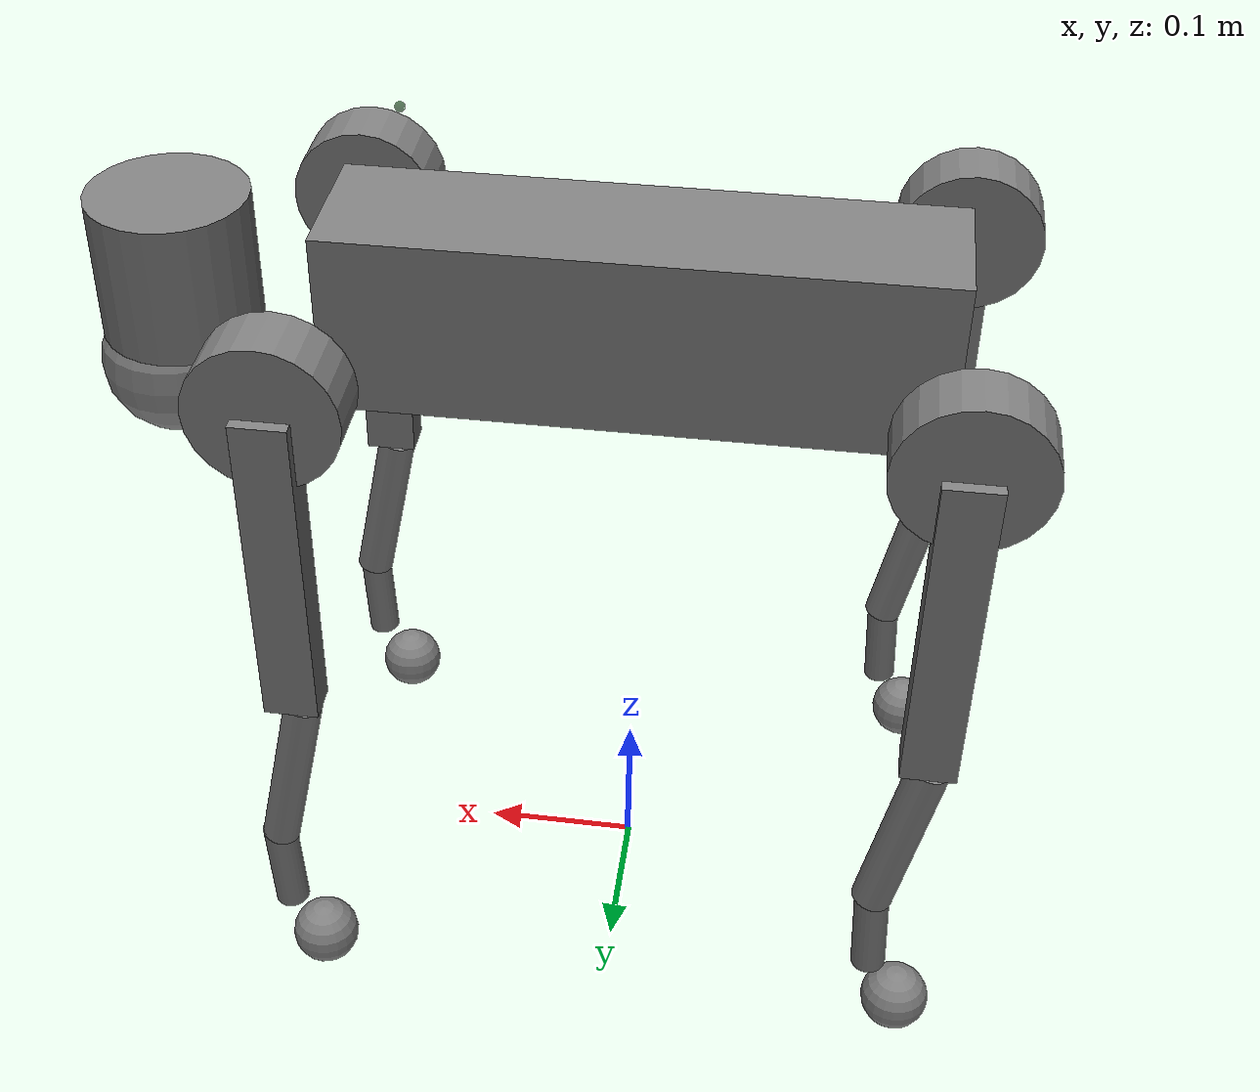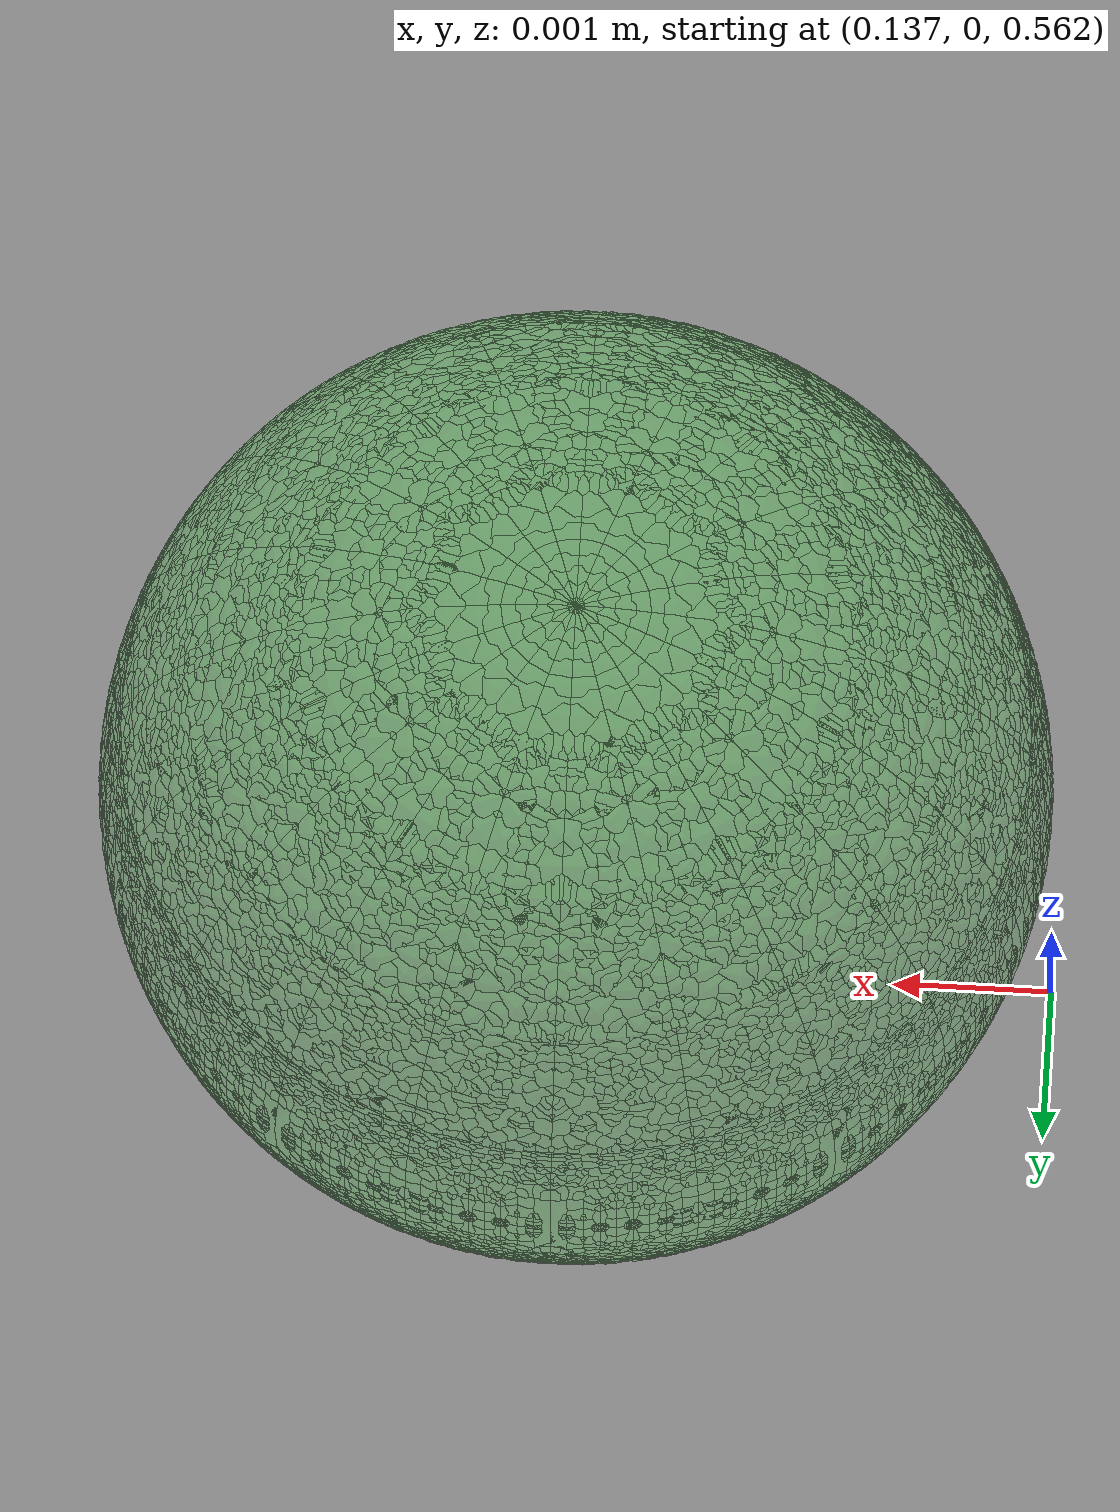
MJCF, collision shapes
<mujoco model="go2">
  <compiler angle="radian" meshdir="assets" autolimits="true" />

  <option cone="elliptic" impratio="100" timestep="0.001" />

  <default>

    <default class="go2">
      <geom friction="0.4" margin="0.001" condim="1"/>
      <joint axis="0 1 0" damping="0.1" armature="0.01" frictionloss="0.2"/>
      <motor ctrlrange="-23.7 23.7"/>

      <!-- 外展 -->
      <default class="abduction">
        <joint axis="1 0 0" range="-1.0472 1.0472"/>
      </default>

      <!-- 大腿关节 -->
      <default class="hip">
      <!-- 前大腿 -->
        <default class="front_hip">
          <joint range="-1.5708 3.4907"/>
        </default>
        <!-- 后大腿 -->
        <default class="back_hip">
          <joint range="-0.5236 4.5379"/>
        </default>
      </default>

      <!-- 小腿关节的 -->
      <default class="knee">
        <joint range="-2.7227 -0.83776"/>
        <motor ctrlrange="-45.43 45.43"/>
      </default>

      <default class="visual">
        <geom type="mesh" contype="0" conaffinity="0" group="2" rgba="1 1 1 1" />
      </default>
      <!-- 碰撞 -->
      <default class="collision">
        <geom group="3"/>
        <default class="foot">
          <geom size="0.022" pos="-0.002 0 -0.213" priority="1" condim="6"
            friction="0.4 0.02 0.01"/>
        </default>
      </default>
    </default>
  </default>

  <asset>
    <material name="metal" rgba=".9 .95 .95 1" />
    <material name="black" rgba="0 0 0 1" />
    <material name="white" rgba="1 1 1 1" />
    <material name="gray" rgba="0.671705 0.692426 0.774270 1" />

    <mesh file="base_0.obj" />
    <mesh file="base_1.obj" />
    <mesh file="base_2.obj" />
    <mesh file="base_3.obj" />
    <mesh file="base_4.obj" />
    <mesh file="hip_0.obj" />
    <mesh file="hip_1.obj" />
    <mesh file="thigh_0.obj" />
    <mesh file="thigh_1.obj" />
    <mesh file="thigh_mirror_0.obj" />
    <mesh file="thigh_mirror_1.obj" />
    <mesh file="calf_0.obj" />
    <mesh file="calf_1.obj" />
    <mesh file="calf_mirror_0.obj" />
    <mesh file="calf_mirror_1.obj" />
    <mesh file="foot.obj" />
  </asset>

  <worldbody>
    <body name="base_link" pos="0 0 0.445" childclass="go2">
    <camera name="camera1" pos="0.33 0 0"  resolution="160 120" euler="0 -1.57 -1.57" />
      <inertial pos="0.021112 0 -0.005366" quat="-0.000543471 0.713435 -0.00173769 0.700719"
        mass="6.921"
        diaginertia="0.107027 0.0980771 0.0244531" />
      <freejoint />
      <geom mesh="base_0" material="black" class="visual" />
      <geom mesh="base_1" material="black" class="visual" />
      <geom mesh="base_2" material="black" class="visual" />
      <geom mesh="base_3" material="white" class="visual" />
      <geom mesh="base_4" material="gray" class="visual" />
      <geom size="0.1881 0.04675 0.057" type="box" class="collision" />
      <geom size="0.05 0.045" pos="0.285 0 0.01" type="cylinder" class="collision" />
      <geom size="0.047" pos="0.293 0 -0.06" class="collision" />

   <site name="imu" pos="-0.02557 0 0.04232" />
      <site name="lidar_site_000" pos="0.14 0 0.12" size="0.003" zaxis="1.000000 0.000000 0" rgba="0 1 0 0.15" />
      <site name="lidar_site_001" pos="0.14 0 0.12" size="0.003" zaxis="0.997564 0.069756 0" rgba="0 1 0 0.15" />
      <site name="lidar_site_002" pos="0.14 0 0.12" size="0.003" zaxis="0.990268 0.139173 0" rgba="0 1 0 0.15" />
      <site name="lidar_site_003" pos="0.14 0 0.12" size="0.003" zaxis="0.978148 0.207912 0" rgba="0 1 0 0.15" />
      <site name="lidar_site_004" pos="0.14 0 0.12" size="0.003" zaxis="0.961262 0.275637 0" rgba="0 1 0 0.15" />
      <site name="lidar_site_005" pos="0.14 0 0.12" size="0.003" zaxis="0.939693 0.342020 0" rgba="0 1 0 0.15" />
      <site name="lidar_site_006" pos="0.14 0 0.12" size="0.003" zaxis="0.913545 0.406737 0" rgba="0 1 0 0.15" />
      <site name="lidar_site_007" pos="0.14 0 0.12" size="0.003" zaxis="0.882948 0.469472 0" rgba="0 1 0 0.15" />
      <site name="lidar_site_008" pos="0.14 0 0.12" size="0.003" zaxis="0.848048 0.529919 0" rgba="0 1 0 0.15" />
      <site name="lidar_site_009" pos="0.14 0 0.12" size="0.003" zaxis="0.809017 0.587785 0" rgba="0 1 0 0.15" />
      <site name="lidar_site_010" pos="0.14 0 0.12" size="0.003" zaxis="0.766044 0.642788 0" rgba="0 1 0 0.15" />
      <site name="lidar_site_011" pos="0.14 0 0.12" size="0.003" zaxis="0.719340 0.694658 0" rgba="0 1 0 0.15" />
      <site name="lidar_site_012" pos="0.14 0 0.12" size="0.003" zaxis="0.669131 0.743145 0" rgba="0 1 0 0.15" />
      <site name="lidar_site_013" pos="0.14 0 0.12" size="0.003" zaxis="0.615661 0.788011 0" rgba="0 1 0 0.15" />
      <site name="lidar_site_014" pos="0.14 0 0.12" size="0.003" zaxis="0.559193 0.829038 0" rgba="0 1 0 0.15" />
      <site name="lidar_site_015" pos="0.14 0 0.12" size="0.003" zaxis="0.500000 0.866025 0" rgba="0 1 0 0.15" />
      <site name="lidar_site_016" pos="0.14 0 0.12" size="0.003" zaxis="0.438371 0.898794 0" rgba="0 1 0 0.15" />
      <site name="lidar_site_017" pos="0.14 0 0.12" size="0.003" zaxis="0.374607 0.927184 0" rgba="0 1 0 0.15" />
      <site name="lidar_site_018" pos="0.14 0 0.12" size="0.003" zaxis="0.309017 0.951057 0" rgba="0 1 0 0.15" />
      <site name="lidar_site_019" pos="0.14 0 0.12" size="0.003" zaxis="0.241922 0.970296 0" rgba="0 1 0 0.15" />
      <site name="lidar_site_020" pos="0.14 0 0.12" size="0.003" zaxis="0.173648 0.984808 0" rgba="0 1 0 0.15" />
      <site name="lidar_site_021" pos="0.14 0 0.12" size="0.003" zaxis="0.104528 0.994522 0" rgba="0 1 0 0.15" />
      <site name="lidar_site_022" pos="0.14 0 0.12" size="0.003" zaxis="0.034899 0.999391 0" rgba="0 1 0 0.15" />
      <site name="lidar_site_023" pos="0.14 0 0.12" size="0.003" zaxis="-0.034899 0.999391 0" rgba="0 1 0 0.15" />
      <site name="lidar_site_024" pos="0.14 0 0.12" size="0.003" zaxis="-0.104528 0.994522 0" rgba="0 1 0 0.15" />
      <site name="lidar_site_025" pos="0.14 0 0.12" size="0.003" zaxis="-0.173648 0.984808 0" rgba="0 1 0 0.15" />
      <site name="lidar_site_026" pos="0.14 0 0.12" size="0.003" zaxis="-0.241922 0.970296 0" rgba="0 1 0 0.15" />
      <site name="lidar_site_027" pos="0.14 0 0.12" size="0.003" zaxis="-0.309017 0.951057 0" rgba="0 1 0 0.15" />
      <site name="lidar_site_028" pos="0.14 0 0.12" size="0.003" zaxis="-0.374607 0.927184 0" rgba="0 1 0 0.15" />
      <site name="lidar_site_029" pos="0.14 0 0.12" size="0.003" zaxis="-0.438371 0.898794 0" rgba="0 1 0 0.15" />
      <site name="lidar_site_030" pos="0.14 0 0.12" size="0.003" zaxis="-0.500000 0.866025 0" rgba="0 1 0 0.15" />
      <site name="lidar_site_031" pos="0.14 0 0.12" size="0.003" zaxis="-0.559193 0.829038 0" rgba="0 1 0 0.15" />
      <site name="lidar_site_032" pos="0.14 0 0.12" size="0.003" zaxis="-0.615661 0.788011 0" rgba="0 1 0 0.15" />
      <site name="lidar_site_033" pos="0.14 0 0.12" size="0.003" zaxis="-0.669131 0.743145 0" rgba="0 1 0 0.15" />
      <site name="lidar_site_034" pos="0.14 0 0.12" size="0.003" zaxis="-0.719340 0.694658 0" rgba="0 1 0 0.15" />
      <site name="lidar_site_035" pos="0.14 0 0.12" size="0.003" zaxis="-0.766044 0.642788 0" rgba="0 1 0 0.15" />
      <site name="lidar_site_036" pos="0.14 0 0.12" size="0.003" zaxis="-0.809017 0.587785 0" rgba="0 1 0 0.15" />
      <site name="lidar_site_037" pos="0.14 0 0.12" size="0.003" zaxis="-0.848048 0.529919 0" rgba="0 1 0 0.15" />
      <site name="lidar_site_038" pos="0.14 0 0.12" size="0.003" zaxis="-0.882948 0.469472 0" rgba="0 1 0 0.15" />
      <site name="lidar_site_039" pos="0.14 0 0.12" size="0.003" zaxis="-0.913545 0.406737 0" rgba="0 1 0 0.15" />
      <site name="lidar_site_040" pos="0.14 0 0.12" size="0.003" zaxis="-0.939693 0.342020 0" rgba="0 1 0 0.15" />
      <site name="lidar_site_041" pos="0.14 0 0.12" size="0.003" zaxis="-0.961262 0.275637 0" rgba="0 1 0 0.15" />
      <site name="lidar_site_042" pos="0.14 0 0.12" size="0.003" zaxis="-0.978148 0.207912 0" rgba="0 1 0 0.15" />
      <site name="lidar_site_043" pos="0.14 0 0.12" size="0.003" zaxis="-0.990268 0.139173 0" rgba="0 1 0 0.15" />
      <site name="lidar_site_044" pos="0.14 0 0.12" size="0.003" zaxis="-0.997564 0.069756 0" rgba="0 1 0 0.15" />
      <site name="lidar_site_045" pos="0.14 0 0.12" size="0.003" zaxis="-1.000000 0.000000 0" rgba="0 1 0 0.15" />
      <site name="lidar_site_046" pos="0.14 0 0.12" size="0.003" zaxis="-0.997564 -0.069756 0" rgba="0 1 0 0.15" />
      <site name="lidar_site_047" pos="0.14 0 0.12" size="0.003" zaxis="-0.990268 -0.139173 0" rgba="0 1 0 0.15" />
      <site name="lidar_site_048" pos="0.14 0 0.12" size="0.003" zaxis="-0.978148 -0.207912 0" rgba="0 1 0 0.15" />
      <site name="lidar_site_049" pos="0.14 0 0.12" size="0.003" zaxis="-0.961262 -0.275637 0" rgba="0 1 0 0.15" />
      <site name="lidar_site_050" pos="0.14 0 0.12" size="0.003" zaxis="-0.939693 -0.342020 0" rgba="0 1 0 0.15" />
      <site name="lidar_site_051" pos="0.14 0 0.12" size="0.003" zaxis="-0.913545 -0.406737 0" rgba="0 1 0 0.15" />
      <site name="lidar_site_052" pos="0.14 0 0.12" size="0.003" zaxis="-0.882948 -0.469472 0" rgba="0 1 0 0.15" />
      <site name="lidar_site_053" pos="0.14 0 0.12" size="0.003" zaxis="-0.848048 -0.529919 0" rgba="0 1 0 0.15" />
      <site name="lidar_site_054" pos="0.14 0 0.12" size="0.003" zaxis="-0.809017 -0.587785 0" rgba="0 1 0 0.15" />
      <site name="lidar_site_055" pos="0.14 0 0.12" size="0.003" zaxis="-0.766044 -0.642788 0" rgba="0 1 0 0.15" />
      <site name="lidar_site_056" pos="0.14 0 0.12" size="0.003" zaxis="-0.719340 -0.694658 0" rgba="0 1 0 0.15" />
      <site name="lidar_site_057" pos="0.14 0 0.12" size="0.003" zaxis="-0.669131 -0.743145 0" rgba="0 1 0 0.15" />
      <site name="lidar_site_058" pos="0.14 0 0.12" size="0.003" zaxis="-0.615661 -0.788011 0" rgba="0 1 0 0.15" />
      <site name="lidar_site_059" pos="0.14 0 0.12" size="0.003" zaxis="-0.559193 -0.829038 0" rgba="0 1 0 0.15" />
      <site name="lidar_site_060" pos="0.14 0 0.12" size="0.003" zaxis="-0.500000 -0.866025 0" rgba="0 1 0 0.15" />
      <site name="lidar_site_061" pos="0.14 0 0.12" size="0.003" zaxis="-0.438371 -0.898794 0" rgba="0 1 0 0.15" />
      <site name="lidar_site_062" pos="0.14 0 0.12" size="0.003" zaxis="-0.374607 -0.927184 0" rgba="0 1 0 0.15" />
      <site name="lidar_site_063" pos="0.14 0 0.12" size="0.003" zaxis="-0.309017 -0.951057 0" rgba="0 1 0 0.15" />
      <site name="lidar_site_064" pos="0.14 0 0.12" size="0.003" zaxis="-0.241922 -0.970296 0" rgba="0 1 0 0.15" />
      <site name="lidar_site_065" pos="0.14 0 0.12" size="0.003" zaxis="-0.173648 -0.984808 0" rgba="0 1 0 0.15" />
      <site name="lidar_site_066" pos="0.14 0 0.12" size="0.003" zaxis="-0.104528 -0.994522 0" rgba="0 1 0 0.15" />
      <site name="lidar_site_067" pos="0.14 0 0.12" size="0.003" zaxis="-0.034899 -0.999391 0" rgba="0 1 0 0.15" />
      <site name="lidar_site_068" pos="0.14 0 0.12" size="0.003" zaxis="0.034899 -0.999391 0" rgba="0 1 0 0.15" />
      <site name="lidar_site_069" pos="0.14 0 0.12" size="0.003" zaxis="0.104528 -0.994522 0" rgba="0 1 0 0.15" />
      <site name="lidar_site_070" pos="0.14 0 0.12" size="0.003" zaxis="0.173648 -0.984808 0" rgba="0 1 0 0.15" />
      <site name="lidar_site_071" pos="0.14 0 0.12" size="0.003" zaxis="0.241922 -0.970296 0" rgba="0 1 0 0.15" />
      <site name="lidar_site_072" pos="0.14 0 0.12" size="0.003" zaxis="0.309017 -0.951057 0" rgba="0 1 0 0.15" />
      <site name="lidar_site_073" pos="0.14 0 0.12" size="0.003" zaxis="0.374607 -0.927184 0" rgba="0 1 0 0.15" />
      <site name="lidar_site_074" pos="0.14 0 0.12" size="0.003" zaxis="0.438371 -0.898794 0" rgba="0 1 0 0.15" />
      <site name="lidar_site_075" pos="0.14 0 0.12" size="0.003" zaxis="0.500000 -0.866025 0" rgba="0 1 0 0.15" />
      <site name="lidar_site_076" pos="0.14 0 0.12" size="0.003" zaxis="0.559193 -0.829038 0" rgba="0 1 0 0.15" />
      <site name="lidar_site_077" pos="0.14 0 0.12" size="0.003" zaxis="0.615661 -0.788011 0" rgba="0 1 0 0.15" />
      <site name="lidar_site_078" pos="0.14 0 0.12" size="0.003" zaxis="0.669131 -0.743145 0" rgba="0 1 0 0.15" />
      <site name="lidar_site_079" pos="0.14 0 0.12" size="0.003" zaxis="0.719340 -0.694658 0" rgba="0 1 0 0.15" />
      <site name="lidar_site_080" pos="0.14 0 0.12" size="0.003" zaxis="0.766044 -0.642788 0" rgba="0 1 0 0.15" />
      <site name="lidar_site_081" pos="0.14 0 0.12" size="0.003" zaxis="0.809017 -0.587785 0" rgba="0 1 0 0.15" />
      <site name="lidar_site_082" pos="0.14 0 0.12" size="0.003" zaxis="0.848048 -0.529919 0" rgba="0 1 0 0.15" />
      <site name="lidar_site_083" pos="0.14 0 0.12" size="0.003" zaxis="0.882948 -0.469472 0" rgba="0 1 0 0.15" />
      <site name="lidar_site_084" pos="0.14 0 0.12" size="0.003" zaxis="0.913545 -0.406737 0" rgba="0 1 0 0.15" />
      <site name="lidar_site_085" pos="0.14 0 0.12" size="0.003" zaxis="0.939693 -0.342020 0" rgba="0 1 0 0.15" />
      <site name="lidar_site_086" pos="0.14 0 0.12" size="0.003" zaxis="0.961262 -0.275637 0" rgba="0 1 0 0.15" />
      <site name="lidar_site_087" pos="0.14 0 0.12" size="0.003" zaxis="0.978148 -0.207912 0" rgba="0 1 0 0.15" />
      <site name="lidar_site_088" pos="0.14 0 0.12" size="0.003" zaxis="0.990268 -0.139173 0" rgba="0 1 0 0.15" />
      <site name="lidar_site_089" pos="0.14 0 0.12" size="0.003" zaxis="0.997564 -0.069756 0" rgba="0 1 0 0.15" />
      <!-- 前左 -->
      <body name="FL_hip" pos="0.1934 0.0465 0">
        <inertial pos="-0.0054 0.00194 -0.000105" quat="0.497014 0.499245 0.505462 0.498237"
          mass="0.678"
          diaginertia="0.00088403 0.000596003 0.000479967" />
        <joint name="FL_hip_joint" class="abduction" />
        <geom mesh="hip_0" material="metal" class="visual" />
        <geom mesh="hip_1" material="gray" class="visual" />
        <geom size="0.046 0.02" pos="0 0.08 0" quat="1 1 0 0" type="cylinder" class="collision" />
        <body name="FL_thigh" pos="0 0.0955 0">
          <inertial pos="-0.00374 -0.0223 -0.0327" quat="0.829533 0.0847635 -0.0200632 0.551623"
            mass="1.152"
            diaginertia="0.00594973 0.00584149 0.000878787" />
          <joint name="FL_thigh_joint" class="front_hip" />
          <geom mesh="thigh_0" material="metal" class="visual" />
          <geom mesh="thigh_1" material="gray" class="visual" />
          <geom size="0.1065 0.01225 0.017" pos="0 0 -0.1065" quat="0.707107 0 0.707107 0"
            type="box" class="collision" />
          <body name="FL_calf" pos="0 0 -0.213">
            <inertial pos="0.00629595 -0.000622121 -0.141417"
              quat="0.710672 0.00154099 -0.00450087 0.703508"
              mass="0.241352" diaginertia="0.0014901 0.00146356 5.31397e-05" />
            <joint name="FL_calf_joint" class="knee" />
            <geom mesh="calf_0" material="gray" class="visual" />
            <geom mesh="calf_1" material="black" class="visual" />
            <geom size="0.012 0.06" pos="0.008 0 -0.06" quat="0.994493 0 -0.104807 0"
              type="cylinder" class="collision" />
            <geom size="0.011 0.0325" pos="0.02 0 -0.148" quat="0.999688 0 0.0249974 0"
              type="cylinder" class="collision" />
            <geom pos="0 0 -0.213" mesh="foot" class="visual" material="black" />
            <geom name="FL" class="foot" />
            <body name="FL_foot" pos="0 0 -0.213" />
          </body>
        </body>
      </body>
      <!-- 前右 -->
      <body name="FR_hip" pos="0.1934 -0.0465 0">
        <inertial pos="-0.0054 -0.00194 -0.000105" quat="0.498237 0.505462 0.499245 0.497014"
          mass="0.678"
          diaginertia="0.00088403 0.000596003 0.000479967" />
        <joint name="FR_hip_joint" class="abduction" />
        <geom mesh="hip_0" material="metal" class="visual" quat="4.63268e-05 1 0 0" />
        <geom mesh="hip_1" material="gray" class="visual" quat="4.63268e-05 1 0 0" />
        <geom size="0.046 0.02" pos="0 -0.08 0" quat="0.707107 0.707107 0 0" type="cylinder"
          class="collision" />
        <body name="FR_thigh" pos="0 -0.0955 0">
          <inertial pos="-0.00374 0.0223 -0.0327" quat="0.551623 -0.0200632 0.0847635 0.829533"
            mass="1.152"
            diaginertia="0.00594973 0.00584149 0.000878787" />
          <joint name="FR_thigh_joint" class="front_hip" />
          <geom mesh="thigh_mirror_0" material="metal" class="visual" />
          <geom mesh="thigh_mirror_1" material="gray" class="visual" />
          <geom size="0.1065 0.01225 0.017" pos="0 0 -0.1065" quat="0.707107 0 0.707107 0"
            type="box" class="collision" />
          <body name="FR_calf" pos="0 0 -0.213">
            <inertial pos="0.00629595 0.000622121 -0.141417"
              quat="0.703508 -0.00450087 0.00154099 0.710672"
              mass="0.241352" diaginertia="0.0014901 0.00146356 5.31397e-05" />
            <joint name="FR_calf_joint" class="knee" />
            <geom mesh="calf_mirror_0" material="gray" class="visual" />
            <geom mesh="calf_mirror_1" material="black" class="visual" />
            <geom size="0.013 0.06" pos="0.01 0 -0.06" quat="0.995004 0 -0.0998334 0"
              type="cylinder" class="collision" />
            <geom size="0.011 0.0325" pos="0.02 0 -0.148" quat="0.999688 0 0.0249974 0"
              type="cylinder" class="collision" />
            <geom pos="0 0 -0.213" mesh="foot" class="visual" material="black" />
            <geom name="FR" class="foot" />
            <body name="FR_foot" pos="0 0 -0.213" />
          </body>
        </body>
      </body>
      <!-- 后左 -->
      <body name="RL_hip" pos="-0.1934 0.0465 0">
        <inertial pos="0.0054 0.00194 -0.000105" quat="0.505462 0.498237 0.497014 0.499245"
          mass="0.678"
          diaginertia="0.00088403 0.000596003 0.000479967" />
        <joint name="RL_hip_joint" class="abduction" />
        <geom mesh="hip_0" material="metal" class="visual" quat="4.63268e-05 0 1 0" />
        <geom mesh="hip_1" material="gray" class="visual" quat="4.63268e-05 0 1 0" />
        <geom size="0.046 0.02" pos="0 0.08 0" quat="0.707107 0.707107 0 0" type="cylinder"
          class="collision" />
        <body name="RL_thigh" pos="0 0.0955 0">
          <inertial pos="-0.00374 -0.0223 -0.0327" quat="0.829533 0.0847635 -0.0200632 0.551623"
            mass="1.152"
            diaginertia="0.00594973 0.00584149 0.000878787" />
          <joint name="RL_thigh_joint" class="back_hip" />
          <geom mesh="thigh_0" material="metal" class="visual" />
          <geom mesh="thigh_1" material="gray" class="visual" />
          <geom size="0.1065 0.01225 0.017" pos="0 0 -0.1065" quat="0.707107 0 0.707107 0"
            type="box" class="collision" />
          <body name="RL_calf" pos="0 0 -0.213">
            <inertial pos="0.00629595 -0.000622121 -0.141417"
              quat="0.710672 0.00154099 -0.00450087 0.703508"
              mass="0.241352" diaginertia="0.0014901 0.00146356 5.31397e-05" />
            <joint name="RL_calf_joint" class="knee" />
            <geom mesh="calf_0" material="gray" class="visual" />
            <geom mesh="calf_1" material="black" class="visual" />
            <geom size="0.013 0.06" pos="0.01 0 -0.06" quat="0.995004 0 -0.0998334 0"
              type="cylinder" class="collision" />
            <geom size="0.011 0.0325" pos="0.02 0 -0.148" quat="0.999688 0 0.0249974 0"
              type="cylinder" class="collision" />
            <geom pos="0 0 -0.213" mesh="foot" class="visual" material="black" />
            <geom name="RL" class="foot" />
            <body name="RL_foot" pos="0 0 -0.213" />
          </body>
        </body>
      </body>
      <!-- 后右边 -->
      <body name="RR_hip" pos="-0.1934 -0.0465 0">
        <inertial pos="0.0054 -0.00194 -0.000105" quat="0.499245 0.497014 0.498237 0.505462"
          mass="0.678"
          diaginertia="0.00088403 0.000596003 0.000479967" />
        <joint name="RR_hip_joint" class="abduction" />
        <geom mesh="hip_0" material="metal" class="visual"
          quat="2.14617e-09 4.63268e-05 4.63268e-05 -1" />
        <geom mesh="hip_1" material="gray" class="visual"
          quat="2.14617e-09 4.63268e-05 4.63268e-05 -1" />
        <geom size="0.046 0.02" pos="0 -0.08 0" quat="0.707107 0.707107 0 0" type="cylinder"
          class="collision" />
        <body name="RR_thigh" pos="0 -0.0955 0">
          <inertial pos="-0.00374 0.0223 -0.0327" quat="0.551623 -0.0200632 0.0847635 0.829533"
            mass="1.152"
            diaginertia="0.00594973 0.00584149 0.000878787" />
          <joint name="RR_thigh_joint" class="back_hip" />
          <geom mesh="thigh_mirror_0" material="metal" class="visual" />
          <geom mesh="thigh_mirror_1" material="gray" class="visual" />
          <geom size="0.1065 0.01225 0.017" pos="0 0 -0.1065" quat="0.707107 0 0.707107 0"
            type="box" class="collision" />
          <body name="RR_calf" pos="0 0 -0.213">
            <inertial pos="0.00629595 0.000622121 -0.141417"
              quat="0.703508 -0.00450087 0.00154099 0.710672"
              mass="0.241352" diaginertia="0.0014901 0.00146356 5.31397e-05" />
            <joint name="RR_calf_joint" class="knee" />
            <geom mesh="calf_mirror_0" material="gray" class="visual" />
            <geom mesh="calf_mirror_1" material="black" class="visual" />
            <geom size="0.013 0.06" pos="0.01 0 -0.06" quat="0.995004 0 -0.0998334 0"
              type="cylinder" class="collision" />
            <geom size="0.011 0.0325" pos="0.02 0 -0.148" quat="0.999688 0 0.0249974 0"
              type="cylinder" class="collision" />
            <geom pos="0 0 -0.213" mesh="foot" class="visual" material="black" />
            <geom name="RR" class="foot" />
            <body name="RR_foot" pos="0 0 -0.213" />
          </body>
        </body>
      </body>
    </body>
  </worldbody>

<!-- 控制器 -->
  <actuator>
    <motor class="abduction" name="FR_hip" joint="FR_hip_joint"  />
    <motor class="hip" name="FR_thigh" joint="FR_thigh_joint"   />
    <motor class="knee" name="FR_calf" joint="FR_calf_joint"  />
    <motor class="abduction" name="FL_hip" joint="FL_hip_joint"  />
    <motor class="hip" name="FL_thigh" joint="FL_thigh_joint"  />
    <motor class="knee" name="FL_calf" joint="FL_calf_joint"  />
    <motor class="abduction" name="RR_hip" joint="RR_hip_joint"  />
    <motor class="hip" name="RR_thigh" joint="RR_thigh_joint"  />
    <motor class="knee" name="RR_calf" joint="RR_calf_joint"  />
    <motor class="abduction" name="RL_hip" joint="RL_hip_joint"  />
    <motor class="hip" name="RL_thigh" joint="RL_thigh_joint"  />
    <motor class="knee" name="RL_calf" joint="RL_calf_joint" />
  </actuator>

  <sensor>
    <jointpos name="FR_hip_pos" joint="FR_hip_joint" />
    <jointpos name="FR_thigh_pos" joint="FR_thigh_joint" />
    <jointpos name="FR_calf_pos" joint="FR_calf_joint" />
    <jointpos name="FL_hip_pos" joint="FL_hip_joint" />
    <jointpos name="FL_thigh_pos" joint="FL_thigh_joint" />
    <jointpos name="FL_calf_pos" joint="FL_calf_joint" />
    <jointpos name="RR_hip_pos" joint="RR_hip_joint" />
    <jointpos name="RR_thigh_pos" joint="RR_thigh_joint" />
    <jointpos name="RR_calf_pos" joint="RR_calf_joint" />
    <jointpos name="RL_hip_pos" joint="RL_hip_joint" />
    <jointpos name="RL_thigh_pos" joint="RL_thigh_joint" />
    <jointpos name="RL_calf_pos" joint="RL_calf_joint" />

    <jointvel name="FR_hip_vel" joint="FR_hip_joint" />
    <jointvel name="FR_thigh_vel" joint="FR_thigh_joint" />
    <jointvel name="FR_calf_vel" joint="FR_calf_joint" />
    <jointvel name="FL_hip_vel" joint="FL_hip_joint" />
    <jointvel name="FL_thigh_vel" joint="FL_thigh_joint" />
    <jointvel name="FL_calf_vel" joint="FL_calf_joint" />
    <jointvel name="RR_hip_vel" joint="RR_hip_joint" />
    <jointvel name="RR_thigh_vel" joint="RR_thigh_joint" />
    <jointvel name="RR_calf_vel" joint="RR_calf_joint" />
    <jointvel name="RL_hip_vel" joint="RL_hip_joint" />
    <jointvel name="RL_thigh_vel" joint="RL_thigh_joint" />
    <jointvel name="RL_calf_vel" joint="RL_calf_joint" />

    <jointactuatorfrc name="FR_hip_torque" joint="FR_hip_joint" noise="0.01" />
    <jointactuatorfrc name="FR_thigh_torque" joint="FR_thigh_joint" noise="0.01" />
    <jointactuatorfrc name="FR_calf_torque" joint="FR_calf_joint" noise="0.01" />
    <jointactuatorfrc name="FL_hip_torque" joint="FL_hip_joint" noise="0.01" />
    <jointactuatorfrc name="FL_thigh_torque" joint="FL_thigh_joint" noise="0.01" />
    <jointactuatorfrc name="FL_calf_torque" joint="FL_calf_joint" noise="0.01" />
    <jointactuatorfrc name="RR_hip_torque" joint="RR_hip_joint" noise="0.01" />
    <jointactuatorfrc name="RR_thigh_torque" joint="RR_thigh_joint" noise="0.01" />
    <jointactuatorfrc name="RR_calf_torque" joint="RR_calf_joint" noise="0.01" />
    <jointactuatorfrc name="RL_hip_torque" joint="RL_hip_joint" noise="0.01" />
    <jointactuatorfrc name="RL_thigh_torque" joint="RL_thigh_joint" noise="0.01" />
    <jointactuatorfrc name="RL_calf_torque" joint="RL_calf_joint" noise="0.01" />

    <!-- 输出四元数 -->
    <framequat name="imu_quat" objtype="site" objname="imu" />
    <!-- 线加速度 -->
    <accelerometer name="imu_acc" site="imu"  />
    <!-- 角速度 -->
     <gyro name="imu_gyro" site="imu"  />
    <rangefinder name="lidar_000" site="lidar_site_000" />
    <rangefinder name="lidar_001" site="lidar_site_001" />
    <rangefinder name="lidar_002" site="lidar_site_002" />
    <rangefinder name="lidar_003" site="lidar_site_003" />
    <rangefinder name="lidar_004" site="lidar_site_004" />
    <rangefinder name="lidar_005" site="lidar_site_005" />
    <rangefinder name="lidar_006" site="lidar_site_006" />
    <rangefinder name="lidar_007" site="lidar_site_007" />
    <rangefinder name="lidar_008" site="lidar_site_008" />
    <rangefinder name="lidar_009" site="lidar_site_009" />
    <rangefinder name="lidar_010" site="lidar_site_010" />
    <rangefinder name="lidar_011" site="lidar_site_011" />
    <rangefinder name="lidar_012" site="lidar_site_012" />
    <rangefinder name="lidar_013" site="lidar_site_013" />
    <rangefinder name="lidar_014" site="lidar_site_014" />
    <rangefinder name="lidar_015" site="lidar_site_015" />
    <rangefinder name="lidar_016" site="lidar_site_016" />
    <rangefinder name="lidar_017" site="lidar_site_017" />
    <rangefinder name="lidar_018" site="lidar_site_018" />
    <rangefinder name="lidar_019" site="lidar_site_019" />
    <rangefinder name="lidar_020" site="lidar_site_020" />
    <rangefinder name="lidar_021" site="lidar_site_021" />
    <rangefinder name="lidar_022" site="lidar_site_022" />
    <rangefinder name="lidar_023" site="lidar_site_023" />
    <rangefinder name="lidar_024" site="lidar_site_024" />
    <rangefinder name="lidar_025" site="lidar_site_025" />
    <rangefinder name="lidar_026" site="lidar_site_026" />
    <rangefinder name="lidar_027" site="lidar_site_027" />
    <rangefinder name="lidar_028" site="lidar_site_028" />
    <rangefinder name="lidar_029" site="lidar_site_029" />
    <rangefinder name="lidar_030" site="lidar_site_030" />
    <rangefinder name="lidar_031" site="lidar_site_031" />
    <rangefinder name="lidar_032" site="lidar_site_032" />
    <rangefinder name="lidar_033" site="lidar_site_033" />
    <rangefinder name="lidar_034" site="lidar_site_034" />
    <rangefinder name="lidar_035" site="lidar_site_035" />
    <rangefinder name="lidar_036" site="lidar_site_036" />
    <rangefinder name="lidar_037" site="lidar_site_037" />
    <rangefinder name="lidar_038" site="lidar_site_038" />
    <rangefinder name="lidar_039" site="lidar_site_039" />
    <rangefinder name="lidar_040" site="lidar_site_040" />
    <rangefinder name="lidar_041" site="lidar_site_041" />
    <rangefinder name="lidar_042" site="lidar_site_042" />
    <rangefinder name="lidar_043" site="lidar_site_043" />
    <rangefinder name="lidar_044" site="lidar_site_044" />
    <rangefinder name="lidar_045" site="lidar_site_045" />
    <rangefinder name="lidar_046" site="lidar_site_046" />
    <rangefinder name="lidar_047" site="lidar_site_047" />
    <rangefinder name="lidar_048" site="lidar_site_048" />
    <rangefinder name="lidar_049" site="lidar_site_049" />
    <rangefinder name="lidar_050" site="lidar_site_050" />
    <rangefinder name="lidar_051" site="lidar_site_051" />
    <rangefinder name="lidar_052" site="lidar_site_052" />
    <rangefinder name="lidar_053" site="lidar_site_053" />
    <rangefinder name="lidar_054" site="lidar_site_054" />
    <rangefinder name="lidar_055" site="lidar_site_055" />
    <rangefinder name="lidar_056" site="lidar_site_056" />
    <rangefinder name="lidar_057" site="lidar_site_057" />
    <rangefinder name="lidar_058" site="lidar_site_058" />
    <rangefinder name="lidar_059" site="lidar_site_059" />
    <rangefinder name="lidar_060" site="lidar_site_060" />
    <rangefinder name="lidar_061" site="lidar_site_061" />
    <rangefinder name="lidar_062" site="lidar_site_062" />
    <rangefinder name="lidar_063" site="lidar_site_063" />
    <rangefinder name="lidar_064" site="lidar_site_064" />
    <rangefinder name="lidar_065" site="lidar_site_065" />
    <rangefinder name="lidar_066" site="lidar_site_066" />
    <rangefinder name="lidar_067" site="lidar_site_067" />
    <rangefinder name="lidar_068" site="lidar_site_068" />
    <rangefinder name="lidar_069" site="lidar_site_069" />
    <rangefinder name="lidar_070" site="lidar_site_070" />
    <rangefinder name="lidar_071" site="lidar_site_071" />
    <rangefinder name="lidar_072" site="lidar_site_072" />
    <rangefinder name="lidar_073" site="lidar_site_073" />
    <rangefinder name="lidar_074" site="lidar_site_074" />
    <rangefinder name="lidar_075" site="lidar_site_075" />
    <rangefinder name="lidar_076" site="lidar_site_076" />
    <rangefinder name="lidar_077" site="lidar_site_077" />
    <rangefinder name="lidar_078" site="lidar_site_078" />
    <rangefinder name="lidar_079" site="lidar_site_079" />
    <rangefinder name="lidar_080" site="lidar_site_080" />
    <rangefinder name="lidar_081" site="lidar_site_081" />
    <rangefinder name="lidar_082" site="lidar_site_082" />
    <rangefinder name="lidar_083" site="lidar_site_083" />
    <rangefinder name="lidar_084" site="lidar_site_084" />
    <rangefinder name="lidar_085" site="lidar_site_085" />
    <rangefinder name="lidar_086" site="lidar_site_086" />
    <rangefinder name="lidar_087" site="lidar_site_087" />
    <rangefinder name="lidar_088" site="lidar_site_088" />
    <rangefinder name="lidar_089" site="lidar_site_089" />

    <!-- 位置 -->
    <!-- 线速度 -->
  </sensor>

  <keyframe>
    <key name="home" qpos="1 0 0.27 1 0 0 0 0 0.9 -1.8 0 0.9 -1.8 0 0.9 -1.8 0 0.9 -1.8"
      ctrl="0 0.9 -1.8 0 0.9 -1.8 0 0.9 -1.8 0 0.9 -1.8" />
  </keyframe>
</mujoco>
